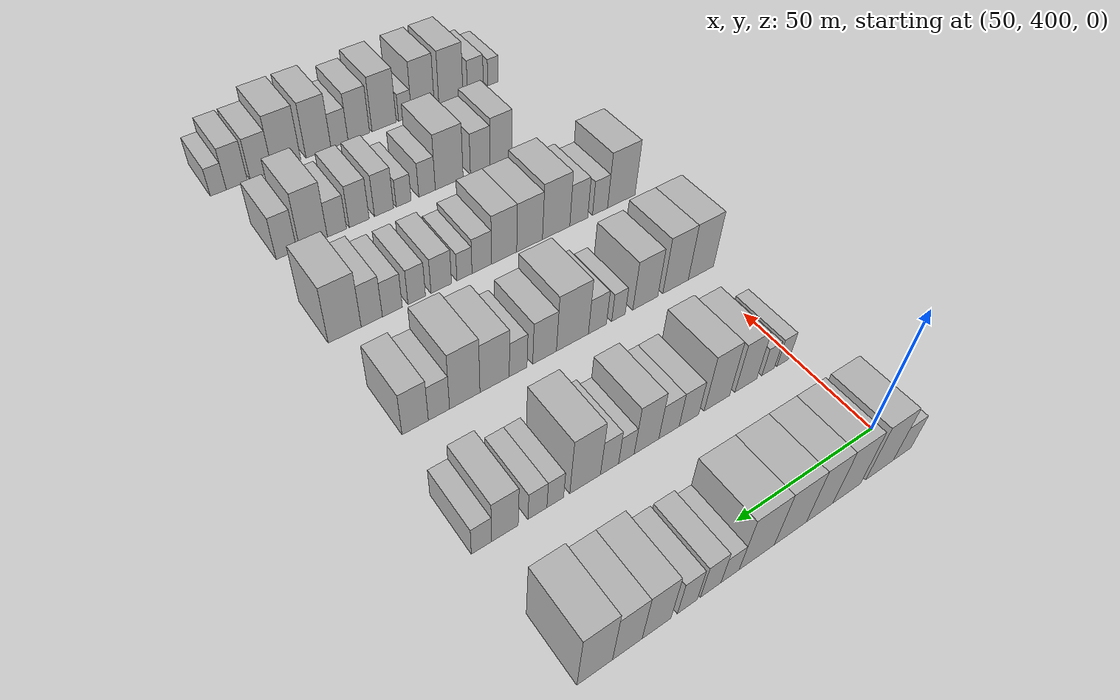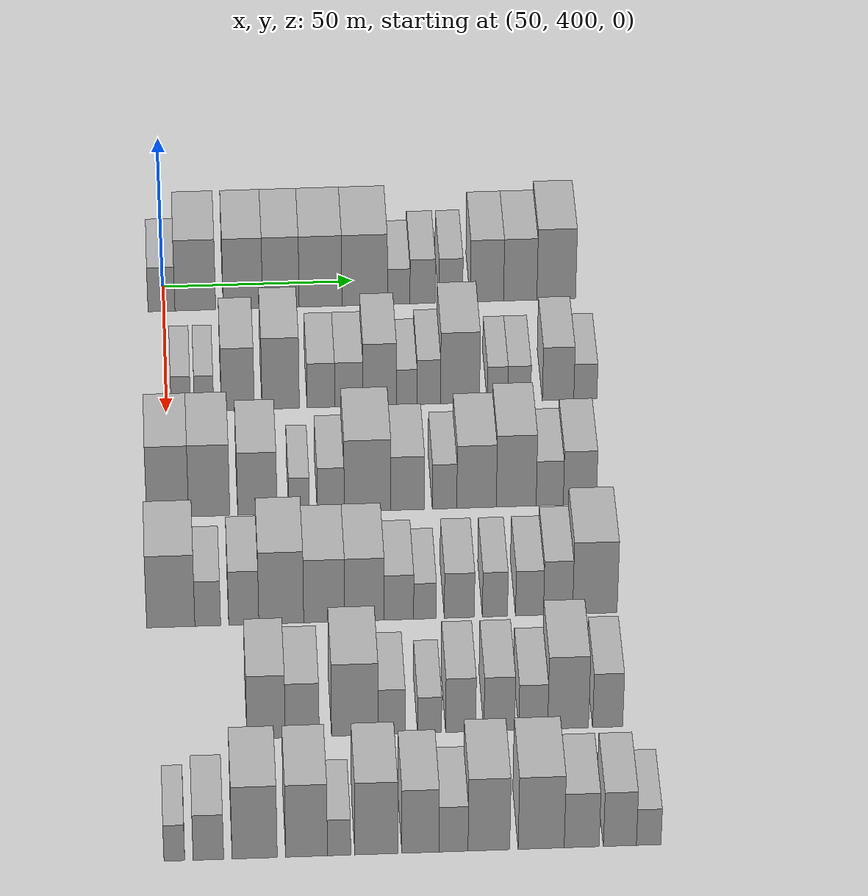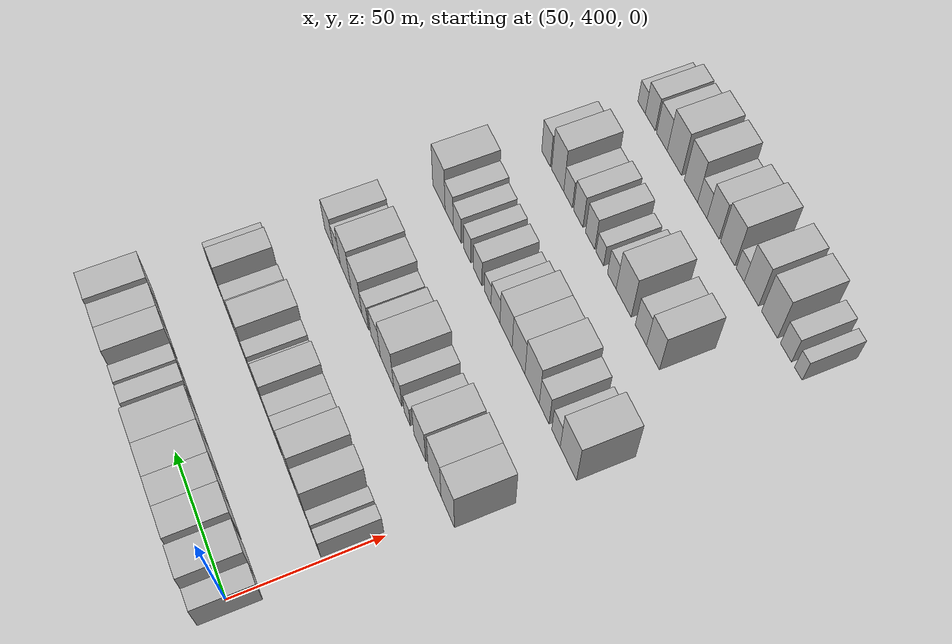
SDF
<sdf version="1.6">
 <world name="default">
  <model name="building_111">
   <static>1</static>
   <pose>50.0000 399.4264 0 0.000000 0.000000 0.000000</pose>
   <link name="link">
    <pose>0 0 7.50 0 0 0</pose>
    <collision name="collision"><geometry><box><size>20.0000 7.0589 15.0000</size></box></geometry></collision>
    <visual name="visual">
     <cast_shadows>0</cast_shadows>
     <geometry><box><size>20.0000 7.0589 15.0000</size></box></geometry>
     <material>
      <script>
       <uri>model://HANNAS_wall/materials/scripts</uri>
       <uri>model://HANNAS_wall/materials/textures</uri>
       <name>vrc/HANNAS_wall</name>
      </script>
     </material>
    </visual>
   </link>
  </model>
  <model name="building_112">
   <static>1</static>
   <pose>50.0000 408.3077 0 0.000000 0.000000 0.000000</pose>
   <link name="link">
    <pose>0 0 12.00 0 0 0</pose>
    <collision name="collision"><geometry><box><size>20.0000 10.7039 24.0000</size></box></geometry></collision>
    <visual name="visual">
     <cast_shadows>0</cast_shadows>
     <geometry><box><size>20.0000 10.7039 24.0000</size></box></geometry>
     <material>
      <script>
       <uri>model://HANNAS_wall/materials/scripts</uri>
       <uri>model://HANNAS_wall/materials/textures</uri>
       <name>vrc/HANNAS_wall</name>
      </script>
     </material>
    </visual>
   </link>
  </model>
  <model name="building_113">
   <static>1</static>
   <pose>50.0000 420.8153 0 0.000000 0.000000 0.000000</pose>
   <link name="link">
    <pose>0 0 12.00 0 0 0</pose>
    <collision name="collision"><geometry><box><size>20.0000 10.3112 24.0000</size></box></geometry></collision>
    <visual name="visual">
     <cast_shadows>0</cast_shadows>
     <geometry><box><size>20.0000 10.3112 24.0000</size></box></geometry>
     <material>
      <script>
       <uri>model://HANNAS_wall/materials/scripts</uri>
       <uri>model://HANNAS_wall/materials/textures</uri>
       <name>vrc/HANNAS_wall</name>
      </script>
     </material>
    </visual>
   </link>
  </model>
  <model name="building_114">
   <static>1</static>
   <pose>50.0000 430.7831 0 0.000000 0.000000 0.000000</pose>
   <link name="link">
    <pose>0 0 12.00 0 0 0</pose>
    <collision name="collision"><geometry><box><size>20.0000 9.6246 24.0000</size></box></geometry></collision>
    <visual name="visual">
     <cast_shadows>0</cast_shadows>
     <geometry><box><size>20.0000 9.6246 24.0000</size></box></geometry>
     <material>
      <script>
       <uri>model://HANNAS_wall/materials/scripts</uri>
       <uri>model://HANNAS_wall/materials/textures</uri>
       <name>vrc/HANNAS_wall</name>
      </script>
     </material>
    </visual>
   </link>
  </model>
  <model name="building_115">
   <static>1</static>
   <pose>50.0000 441.2282 0 0.000000 0.000000 0.000000</pose>
   <link name="link">
    <pose>0 0 12.00 0 0 0</pose>
    <collision name="collision"><geometry><box><size>20.0000 11.2655 24.0000</size></box></geometry></collision>
    <visual name="visual">
     <cast_shadows>0</cast_shadows>
     <geometry><box><size>20.0000 11.2655 24.0000</size></box></geometry>
     <material>
      <script>
       <uri>model://HANNAS_wall/materials/scripts</uri>
       <uri>model://HANNAS_wall/materials/textures</uri>
       <name>vrc/HANNAS_wall</name>
      </script>
     </material>
    </visual>
   </link>
  </model>
  <model name="building_116">
   <static>1</static>
   <pose>50.0000 452.8354 0 0.000000 0.000000 0.000000</pose>
   <link name="link">
    <pose>0 0 12.00 0 0 0</pose>
    <collision name="collision"><geometry><box><size>20.0000 11.9491 24.0000</size></box></geometry></collision>
    <visual name="visual">
     <cast_shadows>0</cast_shadows>
     <geometry><box><size>20.0000 11.9491 24.0000</size></box></geometry>
     <material>
      <script>
       <uri>model://HANNAS_wall/materials/scripts</uri>
       <uri>model://HANNAS_wall/materials/textures</uri>
       <name>vrc/HANNAS_wall</name>
      </script>
     </material>
    </visual>
   </link>
  </model>
  <model name="building_117">
   <static>1</static>
   <pose>50.0000 461.7964 0 0.000000 0.000000 0.000000</pose>
   <link name="link">
    <pose>0 0 6.00 0 0 0</pose>
    <collision name="collision"><geometry><box><size>20.0000 5.9728 12.0000</size></box></geometry></collision>
    <visual name="visual">
     <cast_shadows>0</cast_shadows>
     <geometry><box><size>20.0000 5.9728 12.0000</size></box></geometry>
     <material>
      <script>
       <uri>model://HANNAS_wall/materials/scripts</uri>
       <uri>model://HANNAS_wall/materials/textures</uri>
       <name>vrc/HANNAS_wall</name>
      </script>
     </material>
    </visual>
   </link>
  </model>
  <model name="building_118">
   <static>1</static>
   <pose>50.0000 468.0934 0 0.000000 0.000000 0.000000</pose>
   <link name="link">
    <pose>0 0 7.50 0 0 0</pose>
    <collision name="collision"><geometry><box><size>20.0000 6.6213 15.0000</size></box></geometry></collision>
    <visual name="visual">
     <cast_shadows>0</cast_shadows>
     <geometry><box><size>20.0000 6.6213 15.0000</size></box></geometry>
     <material>
      <script>
       <uri>model://HANNAS_wall/materials/scripts</uri>
       <uri>model://HANNAS_wall/materials/textures</uri>
       <name>vrc/HANNAS_wall</name>
      </script>
     </material>
    </visual>
   </link>
  </model>
  <model name="building_119">
   <static>1</static>
   <pose>50.0000 475.5286 0 0.000000 0.000000 0.000000</pose>
   <link name="link">
    <pose>0 0 7.50 0 0 0</pose>
    <collision name="collision"><geometry><box><size>20.0000 6.2490 15.0000</size></box></geometry></collision>
    <visual name="visual">
     <cast_shadows>0</cast_shadows>
     <geometry><box><size>20.0000 6.2490 15.0000</size></box></geometry>
     <material>
      <script>
       <uri>model://HANNAS_wall/materials/scripts</uri>
       <uri>model://HANNAS_wall/materials/textures</uri>
       <name>vrc/HANNAS_wall</name>
      </script>
     </material>
    </visual>
   </link>
  </model>
  <model name="building_120">
   <static>1</static>
   <pose>50.0000 485.0445 0 0.000000 0.000000 0.000000</pose>
   <link name="link">
    <pose>0 0 10.50 0 0 0</pose>
    <collision name="collision"><geometry><box><size>20.0000 8.7830 21.0000</size></box></geometry></collision>
    <visual name="visual">
     <cast_shadows>0</cast_shadows>
     <geometry><box><size>20.0000 8.7830 21.0000</size></box></geometry>
     <material>
      <script>
       <uri>model://HANNAS_wall/materials/scripts</uri>
       <uri>model://HANNAS_wall/materials/textures</uri>
       <name>vrc/HANNAS_wall</name>
      </script>
     </material>
    </visual>
   </link>
  </model>
  <model name="building_121">
   <static>1</static>
   <pose>50.0000 493.8244 0 0.000000 0.000000 0.000000</pose>
   <link name="link">
    <pose>0 0 10.50 0 0 0</pose>
    <collision name="collision"><geometry><box><size>20.0000 8.7767 21.0000</size></box></geometry></collision>
    <visual name="visual">
     <cast_shadows>0</cast_shadows>
     <geometry><box><size>20.0000 8.7767 21.0000</size></box></geometry>
     <material>
      <script>
       <uri>model://HANNAS_wall/materials/scripts</uri>
       <uri>model://HANNAS_wall/materials/textures</uri>
       <name>vrc/HANNAS_wall</name>
      </script>
     </material>
    </visual>
   </link>
  </model>
  <model name="building_122">
   <static>1</static>
   <pose>50.0000 503.3125 0 0.000000 0.000000 0.000000</pose>
   <link name="link">
    <pose>0 0 12.00 0 0 0</pose>
    <collision name="collision"><geometry><box><size>20.0000 10.1996 24.0000</size></box></geometry></collision>
    <visual name="visual">
     <cast_shadows>0</cast_shadows>
     <geometry><box><size>20.0000 10.1996 24.0000</size></box></geometry>
     <material>
      <script>
       <uri>model://HANNAS_wall/materials/scripts</uri>
       <uri>model://HANNAS_wall/materials/textures</uri>
       <name>vrc/HANNAS_wall</name>
      </script>
     </material>
    </visual>
   </link>
  </model>
  <model name="building_249">
   <static>1</static>
   <pose>90.0000 403.7548 0 0.000000 0.000000 0.000000</pose>
   <link name="link">
    <pose>0 0 6.00 0 0 0</pose>
    <collision name="collision"><geometry><box><size>20.0000 4.9870 12.0000</size></box></geometry></collision>
    <visual name="visual">
     <cast_shadows>0</cast_shadows>
     <geometry><box><size>20.0000 4.9870 12.0000</size></box></geometry>
     <material>
      <script>
       <uri>model://HANNAS_wall/materials/scripts</uri>
       <uri>model://HANNAS_wall/materials/textures</uri>
       <name>vrc/HANNAS_wall</name>
      </script>
     </material>
    </visual>
   </link>
  </model>
  <model name="building_250">
   <static>1</static>
   <pose>90.0000 409.7225 0 0.000000 0.000000 0.000000</pose>
   <link name="link">
    <pose>0 0 6.00 0 0 0</pose>
    <collision name="collision"><geometry><box><size>20.0000 4.9484 12.0000</size></box></geometry></collision>
    <visual name="visual">
     <cast_shadows>0</cast_shadows>
     <geometry><box><size>20.0000 4.9484 12.0000</size></box></geometry>
     <material>
      <script>
       <uri>model://HANNAS_wall/materials/scripts</uri>
       <uri>model://HANNAS_wall/materials/textures</uri>
       <name>vrc/HANNAS_wall</name>
      </script>
     </material>
    </visual>
   </link>
  </model>
  <model name="building_251">
   <static>1</static>
   <pose>90.0000 418.4269 0 0.000000 0.000000 0.000000</pose>
   <link name="link">
    <pose>0 0 10.50 0 0 0</pose>
    <collision name="collision"><geometry><box><size>20.0000 8.4603 21.0000</size></box></geometry></collision>
    <visual name="visual">
     <cast_shadows>0</cast_shadows>
     <geometry><box><size>20.0000 8.4603 21.0000</size></box></geometry>
     <material>
      <script>
       <uri>model://HANNAS_wall/materials/scripts</uri>
       <uri>model://HANNAS_wall/materials/textures</uri>
       <name>vrc/HANNAS_wall</name>
      </script>
     </material>
    </visual>
   </link>
  </model>
  <model name="building_252">
   <static>1</static>
   <pose>90.0000 429.4572 0 0.000000 0.000000 0.000000</pose>
   <link name="link">
    <pose>0 0 12.00 0 0 0</pose>
    <collision name="collision"><geometry><box><size>20.0000 9.6005 24.0000</size></box></geometry></collision>
    <visual name="visual">
     <cast_shadows>0</cast_shadows>
     <geometry><box><size>20.0000 9.6005 24.0000</size></box></geometry>
     <material>
      <script>
       <uri>model://HANNAS_wall/materials/scripts</uri>
       <uri>model://HANNAS_wall/materials/textures</uri>
       <name>vrc/HANNAS_wall</name>
      </script>
     </material>
    </visual>
   </link>
  </model>
  <model name="building_253">
   <static>1</static>
   <pose>90.0000 439.8333 0 0.000000 0.000000 0.000000</pose>
   <link name="link">
    <pose>0 0 7.50 0 0 0</pose>
    <collision name="collision"><geometry><box><size>20.0000 7.1517 15.0000</size></box></geometry></collision>
    <visual name="visual">
     <cast_shadows>0</cast_shadows>
     <geometry><box><size>20.0000 7.1517 15.0000</size></box></geometry>
     <material>
      <script>
       <uri>model://HANNAS_wall/materials/scripts</uri>
       <uri>model://HANNAS_wall/materials/textures</uri>
       <name>vrc/HANNAS_wall</name>
      </script>
     </material>
    </visual>
   </link>
  </model>
  <model name="building_254">
   <static>1</static>
   <pose>90.0000 447.0410 0 0.000000 0.000000 0.000000</pose>
   <link name="link">
    <pose>0 0 7.50 0 0 0</pose>
    <collision name="collision"><geometry><box><size>20.0000 7.2637 15.0000</size></box></geometry></collision>
    <visual name="visual">
     <cast_shadows>0</cast_shadows>
     <geometry><box><size>20.0000 7.2637 15.0000</size></box></geometry>
     <material>
      <script>
       <uri>model://HANNAS_wall/materials/scripts</uri>
       <uri>model://HANNAS_wall/materials/textures</uri>
       <name>vrc/HANNAS_wall</name>
      </script>
     </material>
    </visual>
   </link>
  </model>
  <model name="building_255">
   <static>1</static>
   <pose>90.0000 454.9723 0 0.000000 0.000000 0.000000</pose>
   <link name="link">
    <pose>0 0 10.50 0 0 0</pose>
    <collision name="collision"><geometry><box><size>20.0000 8.5988 21.0000</size></box></geometry></collision>
    <visual name="visual">
     <cast_shadows>0</cast_shadows>
     <geometry><box><size>20.0000 8.5988 21.0000</size></box></geometry>
     <material>
      <script>
       <uri>model://HANNAS_wall/materials/scripts</uri>
       <uri>model://HANNAS_wall/materials/textures</uri>
       <name>vrc/HANNAS_wall</name>
      </script>
     </material>
    </visual>
   </link>
  </model>
  <model name="building_256">
   <static>1</static>
   <pose>90.0000 461.9414 0 0.000000 0.000000 0.000000</pose>
   <link name="link">
    <pose>0 0 6.00 0 0 0</pose>
    <collision name="collision"><geometry><box><size>20.0000 5.3395 12.0000</size></box></geometry></collision>
    <visual name="visual">
     <cast_shadows>0</cast_shadows>
     <geometry><box><size>20.0000 5.3395 12.0000</size></box></geometry>
     <material>
      <script>
       <uri>model://HANNAS_wall/materials/scripts</uri>
       <uri>model://HANNAS_wall/materials/textures</uri>
       <name>vrc/HANNAS_wall</name>
      </script>
     </material>
    </visual>
   </link>
  </model>
  <model name="building_257">
   <static>1</static>
   <pose>90.0000 467.6461 0 0.000000 0.000000 0.000000</pose>
   <link name="link">
    <pose>0 0 7.50 0 0 0</pose>
    <collision name="collision"><geometry><box><size>20.0000 6.0700 15.0000</size></box></geometry></collision>
    <visual name="visual">
     <cast_shadows>0</cast_shadows>
     <geometry><box><size>20.0000 6.0700 15.0000</size></box></geometry>
     <material>
      <script>
       <uri>model://HANNAS_wall/materials/scripts</uri>
       <uri>model://HANNAS_wall/materials/textures</uri>
       <name>vrc/HANNAS_wall</name>
      </script>
     </material>
    </visual>
   </link>
  </model>
  <model name="building_258">
   <static>1</static>
   <pose>90.0000 475.7123 0 0.000000 0.000000 0.000000</pose>
   <link name="link">
    <pose>0 0 12.00 0 0 0</pose>
    <collision name="collision"><geometry><box><size>20.0000 10.0623 24.0000</size></box></geometry></collision>
    <visual name="visual">
     <cast_shadows>0</cast_shadows>
     <geometry><box><size>20.0000 10.0623 24.0000</size></box></geometry>
     <material>
      <script>
       <uri>model://HANNAS_wall/materials/scripts</uri>
       <uri>model://HANNAS_wall/materials/textures</uri>
       <name>vrc/HANNAS_wall</name>
      </script>
     </material>
    </visual>
   </link>
  </model>
  <model name="building_259">
   <static>1</static>
   <pose>90.0000 485.4046 0 0.000000 0.000000 0.000000</pose>
   <link name="link">
    <pose>0 0 6.00 0 0 0</pose>
    <collision name="collision"><geometry><box><size>20.0000 5.3223 12.0000</size></box></geometry></collision>
    <visual name="visual">
     <cast_shadows>0</cast_shadows>
     <geometry><box><size>20.0000 5.3223 12.0000</size></box></geometry>
     <material>
      <script>
       <uri>model://HANNAS_wall/materials/scripts</uri>
       <uri>model://HANNAS_wall/materials/textures</uri>
       <name>vrc/HANNAS_wall</name>
      </script>
     </material>
    </visual>
   </link>
  </model>
  <model name="building_260">
   <static>1</static>
   <pose>90.0000 491.0304 0 0.000000 0.000000 0.000000</pose>
   <link name="link">
    <pose>0 0 6.00 0 0 0</pose>
    <collision name="collision"><geometry><box><size>20.0000 5.9293 12.0000</size></box></geometry></collision>
    <visual name="visual">
     <cast_shadows>0</cast_shadows>
     <geometry><box><size>20.0000 5.9293 12.0000</size></box></geometry>
     <material>
      <script>
       <uri>model://HANNAS_wall/materials/scripts</uri>
       <uri>model://HANNAS_wall/materials/textures</uri>
       <name>vrc/HANNAS_wall</name>
      </script>
     </material>
    </visual>
   </link>
  </model>
  <model name="building_261">
   <static>1</static>
   <pose>90.0000 501.0549 0 0.000000 0.000000 0.000000</pose>
   <link name="link">
    <pose>0 0 9.00 0 0 0</pose>
    <collision name="collision"><geometry><box><size>20.0000 8.1198 18.0000</size></box></geometry></collision>
    <visual name="visual">
     <cast_shadows>0</cast_shadows>
     <geometry><box><size>20.0000 8.1198 18.0000</size></box></geometry>
     <material>
      <script>
       <uri>model://HANNAS_wall/materials/scripts</uri>
       <uri>model://HANNAS_wall/materials/textures</uri>
       <name>vrc/HANNAS_wall</name>
      </script>
     </material>
    </visual>
   </link>
  </model>
  <model name="building_262">
   <static>1</static>
   <pose>90.0000 508.1097 0 0.000000 0.000000 0.000000</pose>
   <link name="link">
    <pose>0 0 6.00 0 0 0</pose>
    <collision name="collision"><geometry><box><size>20.0000 5.9897 12.0000</size></box></geometry></collision>
    <visual name="visual">
     <cast_shadows>0</cast_shadows>
     <geometry><box><size>20.0000 5.9897 12.0000</size></box></geometry>
     <material>
      <script>
       <uri>model://HANNAS_wall/materials/scripts</uri>
       <uri>model://HANNAS_wall/materials/textures</uri>
       <name>vrc/HANNAS_wall</name>
      </script>
     </material>
    </visual>
   </link>
  </model>
  <model name="building_390">
   <static>1</static>
   <pose>130.0000 399.6352 0 0.000000 0.000000 0.000000</pose>
   <link name="link">
    <pose>0 0 12.00 0 0 0</pose>
    <collision name="collision"><geometry><box><size>20.0000 10.5675 24.0000</size></box></geometry></collision>
    <visual name="visual">
     <cast_shadows>0</cast_shadows>
     <geometry><box><size>20.0000 10.5675 24.0000</size></box></geometry>
     <material>
      <script>
       <uri>model://HANNAS_wall/materials/scripts</uri>
       <uri>model://HANNAS_wall/materials/textures</uri>
       <name>vrc/HANNAS_wall</name>
      </script>
     </material>
    </visual>
   </link>
  </model>
  <model name="building_391">
   <static>1</static>
   <pose>130.0000 410.1141 0 0.000000 0.000000 0.000000</pose>
   <link name="link">
    <pose>0 0 12.00 0 0 0</pose>
    <collision name="collision"><geometry><box><size>20.0000 10.3903 24.0000</size></box></geometry></collision>
    <visual name="visual">
     <cast_shadows>0</cast_shadows>
     <geometry><box><size>20.0000 10.3903 24.0000</size></box></geometry>
     <material>
      <script>
       <uri>model://HANNAS_wall/materials/scripts</uri>
       <uri>model://HANNAS_wall/materials/textures</uri>
       <name>vrc/HANNAS_wall</name>
      </script>
     </material>
    </visual>
   </link>
  </model>
  <model name="building_392">
   <static>1</static>
   <pose>130.0000 422.2663 0 0.000000 0.000000 0.000000</pose>
   <link name="link">
    <pose>0 0 10.50 0 0 0</pose>
    <collision name="collision"><geometry><box><size>20.0000 9.9141 21.0000</size></box></geometry></collision>
    <visual name="visual">
     <cast_shadows>0</cast_shadows>
     <geometry><box><size>20.0000 9.9141 21.0000</size></box></geometry>
     <material>
      <script>
       <uri>model://HANNAS_wall/materials/scripts</uri>
       <uri>model://HANNAS_wall/materials/textures</uri>
       <name>vrc/HANNAS_wall</name>
      </script>
     </material>
    </visual>
   </link>
  </model>
  <model name="building_393">
   <static>1</static>
   <pose>130.0000 432.8117 0 0.000000 0.000000 0.000000</pose>
   <link name="link">
    <pose>0 0 6.00 0 0 0</pose>
    <collision name="collision"><geometry><box><size>20.0000 5.1768 12.0000</size></box></geometry></collision>
    <visual name="visual">
     <cast_shadows>0</cast_shadows>
     <geometry><box><size>20.0000 5.1768 12.0000</size></box></geometry>
     <material>
      <script>
       <uri>model://HANNAS_wall/materials/scripts</uri>
       <uri>model://HANNAS_wall/materials/textures</uri>
       <name>vrc/HANNAS_wall</name>
      </script>
     </material>
    </visual>
   </link>
  </model>
  <model name="building_394">
   <static>1</static>
   <pose>130.0000 440.8005 0 0.000000 0.000000 0.000000</pose>
   <link name="link">
    <pose>0 0 7.50 0 0 0</pose>
    <collision name="collision"><geometry><box><size>20.0000 6.8008 15.0000</size></box></geometry></collision>
    <visual name="visual">
     <cast_shadows>0</cast_shadows>
     <geometry><box><size>20.0000 6.8008 15.0000</size></box></geometry>
     <material>
      <script>
       <uri>model://HANNAS_wall/materials/scripts</uri>
       <uri>model://HANNAS_wall/materials/textures</uri>
       <name>vrc/HANNAS_wall</name>
      </script>
     </material>
    </visual>
   </link>
  </model>
  <model name="building_395">
   <static>1</static>
   <pose>130.0000 450.0784 0 0.000000 0.000000 0.000000</pose>
   <link name="link">
    <pose>0 0 12.00 0 0 0</pose>
    <collision name="collision"><geometry><box><size>20.0000 11.7549 24.0000</size></box></geometry></collision>
    <visual name="visual">
     <cast_shadows>0</cast_shadows>
     <geometry><box><size>20.0000 11.7549 24.0000</size></box></geometry>
     <material>
      <script>
       <uri>model://HANNAS_wall/materials/scripts</uri>
       <uri>model://HANNAS_wall/materials/textures</uri>
       <name>vrc/HANNAS_wall</name>
      </script>
     </material>
    </visual>
   </link>
  </model>
  <model name="building_396">
   <static>1</static>
   <pose>130.0000 460.2153 0 0.000000 0.000000 0.000000</pose>
   <link name="link">
    <pose>0 0 9.00 0 0 0</pose>
    <collision name="collision"><geometry><box><size>20.0000 8.5189 18.0000</size></box></geometry></collision>
    <visual name="visual">
     <cast_shadows>0</cast_shadows>
     <geometry><box><size>20.0000 8.5189 18.0000</size></box></geometry>
     <material>
      <script>
       <uri>model://HANNAS_wall/materials/scripts</uri>
       <uri>model://HANNAS_wall/materials/textures</uri>
       <name>vrc/HANNAS_wall</name>
      </script>
     </material>
    </visual>
   </link>
  </model>
  <model name="building_397">
   <static>1</static>
   <pose>130.0000 469.5668 0 0.000000 0.000000 0.000000</pose>
   <link name="link">
    <pose>0 0 7.50 0 0 0</pose>
    <collision name="collision"><geometry><box><size>20.0000 6.1840 15.0000</size></box></geometry></collision>
    <visual name="visual">
     <cast_shadows>0</cast_shadows>
     <geometry><box><size>20.0000 6.1840 15.0000</size></box></geometry>
     <material>
      <script>
       <uri>model://HANNAS_wall/materials/scripts</uri>
       <uri>model://HANNAS_wall/materials/textures</uri>
       <name>vrc/HANNAS_wall</name>
      </script>
     </material>
    </visual>
   </link>
  </model>
  <model name="building_398">
   <static>1</static>
   <pose>130.0000 477.6536 0 0.000000 0.000000 0.000000</pose>
   <link name="link">
    <pose>0 0 10.50 0 0 0</pose>
    <collision name="collision"><geometry><box><size>20.0000 9.9896 21.0000</size></box></geometry></collision>
    <visual name="visual">
     <cast_shadows>0</cast_shadows>
     <geometry><box><size>20.0000 9.9896 21.0000</size></box></geometry>
     <material>
      <script>
       <uri>model://HANNAS_wall/materials/scripts</uri>
       <uri>model://HANNAS_wall/materials/textures</uri>
       <name>vrc/HANNAS_wall</name>
      </script>
     </material>
    </visual>
   </link>
  </model>
  <model name="building_399">
   <static>1</static>
   <pose>130.0000 487.6936 0 0.000000 0.000000 0.000000</pose>
   <link name="link">
    <pose>0 0 12.00 0 0 0</pose>
    <collision name="collision"><geometry><box><size>20.0000 10.0903 24.0000</size></box></geometry></collision>
    <visual name="visual">
     <cast_shadows>0</cast_shadows>
     <geometry><box><size>20.0000 10.0903 24.0000</size></box></geometry>
     <material>
      <script>
       <uri>model://HANNAS_wall/materials/scripts</uri>
       <uri>model://HANNAS_wall/materials/textures</uri>
       <name>vrc/HANNAS_wall</name>
      </script>
     </material>
    </visual>
   </link>
  </model>
  <model name="building_400">
   <static>1</static>
   <pose>130.0000 496.1750 0 0.000000 0.000000 0.000000</pose>
   <link name="link">
    <pose>0 0 7.50 0 0 0</pose>
    <collision name="collision"><geometry><box><size>20.0000 6.8726 15.0000</size></box></geometry></collision>
    <visual name="visual">
     <cast_shadows>0</cast_shadows>
     <geometry><box><size>20.0000 6.8726 15.0000</size></box></geometry>
     <material>
      <script>
       <uri>model://HANNAS_wall/materials/scripts</uri>
       <uri>model://HANNAS_wall/materials/textures</uri>
       <name>vrc/HANNAS_wall</name>
      </script>
     </material>
    </visual>
   </link>
  </model>
  <model name="building_401">
   <static>1</static>
   <pose>130.0000 503.7958 0 0.000000 0.000000 0.000000</pose>
   <link name="link">
    <pose>0 0 9.00 0 0 0</pose>
    <collision name="collision"><geometry><box><size>20.0000 8.3692 18.0000</size></box></geometry></collision>
    <visual name="visual">
     <cast_shadows>0</cast_shadows>
     <geometry><box><size>20.0000 8.3692 18.0000</size></box></geometry>
     <material>
      <script>
       <uri>model://HANNAS_wall/materials/scripts</uri>
       <uri>model://HANNAS_wall/materials/textures</uri>
       <name>vrc/HANNAS_wall</name>
      </script>
     </material>
    </visual>
   </link>
  </model>
  <model name="building_529">
   <static>1</static>
   <pose>170.0000 399.7081 0 0.000000 0.000000 0.000000</pose>
   <link name="link">
    <pose>0 0 12.00 0 0 0</pose>
    <collision name="collision"><geometry><box><size>20.0000 11.8728 24.0000</size></box></geometry></collision>
    <visual name="visual">
     <cast_shadows>0</cast_shadows>
     <geometry><box><size>20.0000 11.8728 24.0000</size></box></geometry>
     <material>
      <script>
       <uri>model://HANNAS_wall/materials/scripts</uri>
       <uri>model://HANNAS_wall/materials/textures</uri>
       <name>vrc/HANNAS_wall</name>
      </script>
     </material>
    </visual>
   </link>
  </model>
  <model name="building_530">
   <static>1</static>
   <pose>170.0000 408.8256 0 0.000000 0.000000 0.000000</pose>
   <link name="link">
    <pose>0 0 7.50 0 0 0</pose>
    <collision name="collision"><geometry><box><size>20.0000 6.3622 15.0000</size></box></geometry></collision>
    <visual name="visual">
     <cast_shadows>0</cast_shadows>
     <geometry><box><size>20.0000 6.3622 15.0000</size></box></geometry>
     <material>
      <script>
       <uri>model://HANNAS_wall/materials/scripts</uri>
       <uri>model://HANNAS_wall/materials/textures</uri>
       <name>vrc/HANNAS_wall</name>
      </script>
     </material>
    </visual>
   </link>
  </model>
  <model name="building_531">
   <static>1</static>
   <pose>170.0000 417.7271 0 0.000000 0.000000 0.000000</pose>
   <link name="link">
    <pose>0 0 9.00 0 0 0</pose>
    <collision name="collision"><geometry><box><size>20.0000 7.4407 18.0000</size></box></geometry></collision>
    <visual name="visual">
     <cast_shadows>0</cast_shadows>
     <geometry><box><size>20.0000 7.4407 18.0000</size></box></geometry>
     <material>
      <script>
       <uri>model://HANNAS_wall/materials/scripts</uri>
       <uri>model://HANNAS_wall/materials/textures</uri>
       <name>vrc/HANNAS_wall</name>
      </script>
     </material>
    </visual>
   </link>
  </model>
  <model name="building_532">
   <static>1</static>
   <pose>170.0000 426.9903 0 0.000000 0.000000 0.000000</pose>
   <link name="link">
    <pose>0 0 12.00 0 0 0</pose>
    <collision name="collision"><geometry><box><size>20.0000 11.0858 24.0000</size></box></geometry></collision>
    <visual name="visual">
     <cast_shadows>0</cast_shadows>
     <geometry><box><size>20.0000 11.0858 24.0000</size></box></geometry>
     <material>
      <script>
       <uri>model://HANNAS_wall/materials/scripts</uri>
       <uri>model://HANNAS_wall/materials/textures</uri>
       <name>vrc/HANNAS_wall</name>
      </script>
     </material>
    </visual>
   </link>
  </model>
  <model name="building_533">
   <static>1</static>
   <pose>170.0000 437.6129 0 0.000000 0.000000 0.000000</pose>
   <link name="link">
    <pose>0 0 10.50 0 0 0</pose>
    <collision name="collision"><geometry><box><size>20.0000 10.1594 21.0000</size></box></geometry></collision>
    <visual name="visual">
     <cast_shadows>0</cast_shadows>
     <geometry><box><size>20.0000 10.1594 21.0000</size></box></geometry>
     <material>
      <script>
       <uri>model://HANNAS_wall/materials/scripts</uri>
       <uri>model://HANNAS_wall/materials/textures</uri>
       <name>vrc/HANNAS_wall</name>
      </script>
     </material>
    </visual>
   </link>
  </model>
  <model name="building_534">
   <static>1</static>
   <pose>170.0000 447.5653 0 0.000000 0.000000 0.000000</pose>
   <link name="link">
    <pose>0 0 10.50 0 0 0</pose>
    <collision name="collision"><geometry><box><size>20.0000 9.7455 21.0000</size></box></geometry></collision>
    <visual name="visual">
     <cast_shadows>0</cast_shadows>
     <geometry><box><size>20.0000 9.7455 21.0000</size></box></geometry>
     <material>
      <script>
       <uri>model://HANNAS_wall/materials/scripts</uri>
       <uri>model://HANNAS_wall/materials/textures</uri>
       <name>vrc/HANNAS_wall</name>
      </script>
     </material>
    </visual>
   </link>
  </model>
  <model name="building_535">
   <static>1</static>
   <pose>170.0000 456.0968 0 0.000000 0.000000 0.000000</pose>
   <link name="link">
    <pose>0 0 7.50 0 0 0</pose>
    <collision name="collision"><geometry><box><size>20.0000 7.3175 15.0000</size></box></geometry></collision>
    <visual name="visual">
     <cast_shadows>0</cast_shadows>
     <geometry><box><size>20.0000 7.3175 15.0000</size></box></geometry>
     <material>
      <script>
       <uri>model://HANNAS_wall/materials/scripts</uri>
       <uri>model://HANNAS_wall/materials/textures</uri>
       <name>vrc/HANNAS_wall</name>
      </script>
     </material>
    </visual>
   </link>
  </model>
  <model name="building_536">
   <static>1</static>
   <pose>170.0000 462.5537 0 0.000000 0.000000 0.000000</pose>
   <link name="link">
    <pose>0 0 6.00 0 0 0</pose>
    <collision name="collision"><geometry><box><size>20.0000 5.5962 12.0000</size></box></geometry></collision>
    <visual name="visual">
     <cast_shadows>0</cast_shadows>
     <geometry><box><size>20.0000 5.5962 12.0000</size></box></geometry>
     <material>
      <script>
       <uri>model://HANNAS_wall/materials/scripts</uri>
       <uri>model://HANNAS_wall/materials/textures</uri>
       <name>vrc/HANNAS_wall</name>
      </script>
     </material>
    </visual>
   </link>
  </model>
  <model name="building_537">
   <static>1</static>
   <pose>170.0000 471.0677 0 0.000000 0.000000 0.000000</pose>
   <link name="link">
    <pose>0 0 7.50 0 0 0</pose>
    <collision name="collision"><geometry><box><size>20.0000 7.4318 15.0000</size></box></geometry></collision>
    <visual name="visual">
     <cast_shadows>0</cast_shadows>
     <geometry><box><size>20.0000 7.4318 15.0000</size></box></geometry>
     <material>
      <script>
       <uri>model://HANNAS_wall/materials/scripts</uri>
       <uri>model://HANNAS_wall/materials/textures</uri>
       <name>vrc/HANNAS_wall</name>
      </script>
     </material>
    </visual>
   </link>
  </model>
  <model name="building_538">
   <static>1</static>
   <pose>170.0000 479.8901 0 0.000000 0.000000 0.000000</pose>
   <link name="link">
    <pose>0 0 7.50 0 0 0</pose>
    <collision name="collision"><geometry><box><size>20.0000 6.2130 15.0000</size></box></geometry></collision>
    <visual name="visual">
     <cast_shadows>0</cast_shadows>
     <geometry><box><size>20.0000 6.2130 15.0000</size></box></geometry>
     <material>
      <script>
       <uri>model://HANNAS_wall/materials/scripts</uri>
       <uri>model://HANNAS_wall/materials/textures</uri>
       <name>vrc/HANNAS_wall</name>
      </script>
     </material>
    </visual>
   </link>
  </model>
  <model name="building_539">
   <static>1</static>
   <pose>170.0000 488.4553 0 0.000000 0.000000 0.000000</pose>
   <link name="link">
    <pose>0 0 7.50 0 0 0</pose>
    <collision name="collision"><geometry><box><size>20.0000 6.9175 15.0000</size></box></geometry></collision>
    <visual name="visual">
     <cast_shadows>0</cast_shadows>
     <geometry><box><size>20.0000 6.9175 15.0000</size></box></geometry>
     <material>
      <script>
       <uri>model://HANNAS_wall/materials/scripts</uri>
       <uri>model://HANNAS_wall/materials/textures</uri>
       <name>vrc/HANNAS_wall</name>
      </script>
     </material>
    </visual>
   </link>
  </model>
  <model name="building_540">
   <static>1</static>
   <pose>170.0000 495.5277 0 0.000000 0.000000 0.000000</pose>
   <link name="link">
    <pose>0 0 9.00 0 0 0</pose>
    <collision name="collision"><geometry><box><size>20.0000 7.2272 18.0000</size></box></geometry></collision>
    <visual name="visual">
     <cast_shadows>0</cast_shadows>
     <geometry><box><size>20.0000 7.2272 18.0000</size></box></geometry>
     <material>
      <script>
       <uri>model://HANNAS_wall/materials/scripts</uri>
       <uri>model://HANNAS_wall/materials/textures</uri>
       <name>vrc/HANNAS_wall</name>
      </script>
     </material>
    </visual>
   </link>
  </model>
  <model name="building_541">
   <static>1</static>
   <pose>170.0000 504.6605 0 0.000000 0.000000 0.000000</pose>
   <link name="link">
    <pose>0 0 12.00 0 0 0</pose>
    <collision name="collision"><geometry><box><size>20.0000 11.0384 24.0000</size></box></geometry></collision>
    <visual name="visual">
     <cast_shadows>0</cast_shadows>
     <geometry><box><size>20.0000 11.0384 24.0000</size></box></geometry>
     <material>
      <script>
       <uri>model://HANNAS_wall/materials/scripts</uri>
       <uri>model://HANNAS_wall/materials/textures</uri>
       <name>vrc/HANNAS_wall</name>
      </script>
     </material>
    </visual>
   </link>
  </model>
  <model name="building_655">
   <static>1</static>
   <pose>210.0000 422.0302 0 0.000000 0.000000 0.000000</pose>
   <link name="link">
    <pose>0 0 10.50 0 0 0</pose>
    <collision name="collision"><geometry><box><size>20.0000 9.2674 21.0000</size></box></geometry></collision>
    <visual name="visual">
     <cast_shadows>0</cast_shadows>
     <geometry><box><size>20.0000 9.2674 21.0000</size></box></geometry>
     <material>
      <script>
       <uri>model://HANNAS_wall/materials/scripts</uri>
       <uri>model://HANNAS_wall/materials/textures</uri>
       <name>vrc/HANNAS_wall</name>
      </script>
     </material>
    </visual>
   </link>
  </model>
  <model name="building_656">
   <static>1</static>
   <pose>210.0000 430.7625 0 0.000000 0.000000 0.000000</pose>
   <link name="link">
    <pose>0 0 9.00 0 0 0</pose>
    <collision name="collision"><geometry><box><size>20.0000 8.1974 18.0000</size></box></geometry></collision>
    <visual name="visual">
     <cast_shadows>0</cast_shadows>
     <geometry><box><size>20.0000 8.1974 18.0000</size></box></geometry>
     <material>
      <script>
       <uri>model://HANNAS_wall/materials/scripts</uri>
       <uri>model://HANNAS_wall/materials/textures</uri>
       <name>vrc/HANNAS_wall</name>
      </script>
     </material>
    </visual>
   </link>
  </model>
  <model name="building_657">
   <static>1</static>
   <pose>210.0000 443.4937 0 0.000000 0.000000 0.000000</pose>
   <link name="link">
    <pose>0 0 12.00 0 0 0</pose>
    <collision name="collision"><geometry><box><size>20.0000 11.2649 24.0000</size></box></geometry></collision>
    <visual name="visual">
     <cast_shadows>0</cast_shadows>
     <geometry><box><size>20.0000 11.2649 24.0000</size></box></geometry>
     <material>
      <script>
       <uri>model://HANNAS_wall/materials/scripts</uri>
       <uri>model://HANNAS_wall/materials/textures</uri>
       <name>vrc/HANNAS_wall</name>
      </script>
     </material>
    </visual>
   </link>
  </model>
  <model name="building_658">
   <static>1</static>
   <pose>210.0000 452.4022 0 0.000000 0.000000 0.000000</pose>
   <link name="link">
    <pose>0 0 7.50 0 0 0</pose>
    <collision name="collision"><geometry><box><size>20.0000 6.5520 15.0000</size></box></geometry></collision>
    <visual name="visual">
     <cast_shadows>0</cast_shadows>
     <geometry><box><size>20.0000 6.5520 15.0000</size></box></geometry>
     <material>
      <script>
       <uri>model://HANNAS_wall/materials/scripts</uri>
       <uri>model://HANNAS_wall/materials/textures</uri>
       <name>vrc/HANNAS_wall</name>
      </script>
     </material>
    </visual>
   </link>
  </model>
  <model name="building_659">
   <static>1</static>
   <pose>210.0000 461.5930 0 0.000000 0.000000 0.000000</pose>
   <link name="link">
    <pose>0 0 6.00 0 0 0</pose>
    <collision name="collision"><geometry><box><size>20.0000 5.8296 12.0000</size></box></geometry></collision>
    <visual name="visual">
     <cast_shadows>0</cast_shadows>
     <geometry><box><size>20.0000 5.8296 12.0000</size></box></geometry>
     <material>
      <script>
       <uri>model://HANNAS_wall/materials/scripts</uri>
       <uri>model://HANNAS_wall/materials/textures</uri>
       <name>vrc/HANNAS_wall</name>
      </script>
     </material>
    </visual>
   </link>
  </model>
  <model name="building_660">
   <static>1</static>
   <pose>210.0000 469.1448 0 0.000000 0.000000 0.000000</pose>
   <link name="link">
    <pose>0 0 9.00 0 0 0</pose>
    <collision name="collision"><geometry><box><size>20.0000 7.2740 18.0000</size></box></geometry></collision>
    <visual name="visual">
     <cast_shadows>0</cast_shadows>
     <geometry><box><size>20.0000 7.2740 18.0000</size></box></geometry>
     <material>
      <script>
       <uri>model://HANNAS_wall/materials/scripts</uri>
       <uri>model://HANNAS_wall/materials/textures</uri>
       <name>vrc/HANNAS_wall</name>
      </script>
     </material>
    </visual>
   </link>
  </model>
  <model name="building_661">
   <static>1</static>
   <pose>210.0000 478.5104 0 0.000000 0.000000 0.000000</pose>
   <link name="link">
    <pose>0 0 9.00 0 0 0</pose>
    <collision name="collision"><geometry><box><size>20.0000 7.4572 18.0000</size></box></geometry></collision>
    <visual name="visual">
     <cast_shadows>0</cast_shadows>
     <geometry><box><size>20.0000 7.4572 18.0000</size></box></geometry>
     <material>
      <script>
       <uri>model://HANNAS_wall/materials/scripts</uri>
       <uri>model://HANNAS_wall/materials/textures</uri>
       <name>vrc/HANNAS_wall</name>
      </script>
     </material>
    </visual>
   </link>
  </model>
  <model name="building_662">
   <static>1</static>
   <pose>210.0000 486.7474 0 0.000000 0.000000 0.000000</pose>
   <link name="link">
    <pose>0 0 7.50 0 0 0</pose>
    <collision name="collision"><geometry><box><size>20.0000 7.0167 15.0000</size></box></geometry></collision>
    <visual name="visual">
     <cast_shadows>0</cast_shadows>
     <geometry><box><size>20.0000 7.0167 15.0000</size></box></geometry>
     <material>
      <script>
       <uri>model://HANNAS_wall/materials/scripts</uri>
       <uri>model://HANNAS_wall/materials/textures</uri>
       <name>vrc/HANNAS_wall</name>
      </script>
     </material>
    </visual>
   </link>
  </model>
  <model name="building_663">
   <static>1</static>
   <pose>210.0000 495.2160 0 0.000000 0.000000 0.000000</pose>
   <link name="link">
    <pose>0 0 12.00 0 0 0</pose>
    <collision name="collision"><geometry><box><size>20.0000 9.9205 24.0000</size></box></geometry></collision>
    <visual name="visual">
     <cast_shadows>0</cast_shadows>
     <geometry><box><size>20.0000 9.9205 24.0000</size></box></geometry>
     <material>
      <script>
       <uri>model://HANNAS_wall/materials/scripts</uri>
       <uri>model://HANNAS_wall/materials/textures</uri>
       <name>vrc/HANNAS_wall</name>
      </script>
     </material>
    </visual>
   </link>
  </model>
  <model name="building_664">
   <static>1</static>
   <pose>210.0000 504.8273 0 0.000000 0.000000 0.000000</pose>
   <link name="link">
    <pose>0 0 9.00 0 0 0</pose>
    <collision name="collision"><geometry><box><size>20.0000 7.3021 18.0000</size></box></geometry></collision>
    <visual name="visual">
     <cast_shadows>0</cast_shadows>
     <geometry><box><size>20.0000 7.3021 18.0000</size></box></geometry>
     <material>
      <script>
       <uri>model://HANNAS_wall/materials/scripts</uri>
       <uri>model://HANNAS_wall/materials/textures</uri>
       <name>vrc/HANNAS_wall</name>
      </script>
     </material>
    </visual>
   </link>
  </model>
  <model name="building_786">
   <static>1</static>
   <pose>250.0000 399.0817 0 0.000000 0.000000 0.000000</pose>
   <link name="link">
    <pose>0 0 6.00 0 0 0</pose>
    <collision name="collision"><geometry><box><size>20.0000 4.9049 12.0000</size></box></geometry></collision>
    <visual name="visual">
     <cast_shadows>0</cast_shadows>
     <geometry><box><size>20.0000 4.9049 12.0000</size></box></geometry>
     <material>
      <script>
       <uri>model://HANNAS_wall/materials/scripts</uri>
       <uri>model://HANNAS_wall/materials/textures</uri>
       <name>vrc/HANNAS_wall</name>
      </script>
     </material>
    </visual>
   </link>
  </model>
  <model name="building_787">
   <static>1</static>
   <pose>250.0000 407.1422 0 0.000000 0.000000 0.000000</pose>
   <link name="link">
    <pose>0 0 7.50 0 0 0</pose>
    <collision name="collision"><geometry><box><size>20.0000 7.2160 15.0000</size></box></geometry></collision>
    <visual name="visual">
     <cast_shadows>0</cast_shadows>
     <geometry><box><size>20.0000 7.2160 15.0000</size></box></geometry>
     <material>
      <script>
       <uri>model://HANNAS_wall/materials/scripts</uri>
       <uri>model://HANNAS_wall/materials/textures</uri>
       <name>vrc/HANNAS_wall</name>
      </script>
     </material>
    </visual>
   </link>
  </model>
  <model name="building_788">
   <static>1</static>
   <pose>250.0000 418.0905 0 0.000000 0.000000 0.000000</pose>
   <link name="link">
    <pose>0 0 12.00 0 0 0</pose>
    <collision name="collision"><geometry><box><size>20.0000 10.6807 24.0000</size></box></geometry></collision>
    <visual name="visual">
     <cast_shadows>0</cast_shadows>
     <geometry><box><size>20.0000 10.6807 24.0000</size></box></geometry>
     <material>
      <script>
       <uri>model://HANNAS_wall/materials/scripts</uri>
       <uri>model://HANNAS_wall/materials/textures</uri>
       <name>vrc/HANNAS_wall</name>
      </script>
     </material>
    </visual>
   </link>
  </model>
  <model name="building_789">
   <static>1</static>
   <pose>250.0000 430.3687 0 0.000000 0.000000 0.000000</pose>
   <link name="link">
    <pose>0 0 12.00 0 0 0</pose>
    <collision name="collision"><geometry><box><size>20.0000 9.8755 24.0000</size></box></geometry></collision>
    <visual name="visual">
     <cast_shadows>0</cast_shadows>
     <geometry><box><size>20.0000 9.8755 24.0000</size></box></geometry>
     <material>
      <script>
       <uri>model://HANNAS_wall/materials/scripts</uri>
       <uri>model://HANNAS_wall/materials/textures</uri>
       <name>vrc/HANNAS_wall</name>
      </script>
     </material>
    </visual>
   </link>
  </model>
  <model name="building_790">
   <static>1</static>
   <pose>250.0000 438.0627 0 0.000000 0.000000 0.000000</pose>
   <link name="link">
    <pose>0 0 6.00 0 0 0</pose>
    <collision name="collision"><geometry><box><size>20.0000 5.5126 12.0000</size></box></geometry></collision>
    <visual name="visual">
     <cast_shadows>0</cast_shadows>
     <geometry><box><size>20.0000 5.5126 12.0000</size></box></geometry>
     <material>
      <script>
       <uri>model://HANNAS_wall/materials/scripts</uri>
       <uri>model://HANNAS_wall/materials/textures</uri>
       <name>vrc/HANNAS_wall</name>
      </script>
     </material>
    </visual>
   </link>
  </model>
  <model name="building_791">
   <static>1</static>
   <pose>250.0000 446.8892 0 0.000000 0.000000 0.000000</pose>
   <link name="link">
    <pose>0 0 12.00 0 0 0</pose>
    <collision name="collision"><geometry><box><size>20.0000 10.1403 24.0000</size></box></geometry></collision>
    <visual name="visual">
     <cast_shadows>0</cast_shadows>
     <geometry><box><size>20.0000 10.1403 24.0000</size></box></geometry>
     <material>
      <script>
       <uri>model://HANNAS_wall/materials/scripts</uri>
       <uri>model://HANNAS_wall/materials/textures</uri>
       <name>vrc/HANNAS_wall</name>
      </script>
     </material>
    </visual>
   </link>
  </model>
  <model name="building_792">
   <static>1</static>
   <pose>250.0000 457.3561 0 0.000000 0.000000 0.000000</pose>
   <link name="link">
    <pose>0 0 10.50 0 0 0</pose>
    <collision name="collision"><geometry><box><size>20.0000 8.7935 21.0000</size></box></geometry></collision>
    <visual name="visual">
     <cast_shadows>0</cast_shadows>
     <geometry><box><size>20.0000 8.7935 21.0000</size></box></geometry>
     <material>
      <script>
       <uri>model://HANNAS_wall/materials/scripts</uri>
       <uri>model://HANNAS_wall/materials/textures</uri>
       <name>vrc/HANNAS_wall</name>
      </script>
     </material>
    </visual>
   </link>
  </model>
  <model name="building_793">
   <static>1</static>
   <pose>250.0000 465.1959 0 0.000000 0.000000 0.000000</pose>
   <link name="link">
    <pose>0 0 7.50 0 0 0</pose>
    <collision name="collision"><geometry><box><size>20.0000 6.8862 15.0000</size></box></geometry></collision>
    <visual name="visual">
     <cast_shadows>0</cast_shadows>
     <geometry><box><size>20.0000 6.8862 15.0000</size></box></geometry>
     <material>
      <script>
       <uri>model://HANNAS_wall/materials/scripts</uri>
       <uri>model://HANNAS_wall/materials/textures</uri>
       <name>vrc/HANNAS_wall</name>
      </script>
     </material>
    </visual>
   </link>
  </model>
  <model name="building_794">
   <static>1</static>
   <pose>250.0000 473.5920 0 0.000000 0.000000 0.000000</pose>
   <link name="link">
    <pose>0 0 12.00 0 0 0</pose>
    <collision name="collision"><geometry><box><size>20.0000 9.9059 24.0000</size></box></geometry></collision>
    <visual name="visual">
     <cast_shadows>0</cast_shadows>
     <geometry><box><size>20.0000 9.9059 24.0000</size></box></geometry>
     <material>
      <script>
       <uri>model://HANNAS_wall/materials/scripts</uri>
       <uri>model://HANNAS_wall/materials/textures</uri>
       <name>vrc/HANNAS_wall</name>
      </script>
     </material>
    </visual>
   </link>
  </model>
  <model name="building_795">
   <static>1</static>
   <pose>250.0000 486.0146 0 0.000000 0.000000 0.000000</pose>
   <link name="link">
    <pose>0 0 12.00 0 0 0</pose>
    <collision name="collision"><geometry><box><size>20.0000 10.9393 24.0000</size></box></geometry></collision>
    <visual name="visual">
     <cast_shadows>0</cast_shadows>
     <geometry><box><size>20.0000 10.9393 24.0000</size></box></geometry>
     <material>
      <script>
       <uri>model://HANNAS_wall/materials/scripts</uri>
       <uri>model://HANNAS_wall/materials/textures</uri>
       <name>vrc/HANNAS_wall</name>
      </script>
     </material>
    </visual>
   </link>
  </model>
  <model name="building_796">
   <static>1</static>
   <pose>250.0000 495.6373 0 0.000000 0.000000 0.000000</pose>
   <link name="link">
    <pose>0 0 9.00 0 0 0</pose>
    <collision name="collision"><geometry><box><size>20.0000 8.3061 18.0000</size></box></geometry></collision>
    <visual name="visual">
     <cast_shadows>0</cast_shadows>
     <geometry><box><size>20.0000 8.3061 18.0000</size></box></geometry>
     <material>
      <script>
       <uri>model://HANNAS_wall/materials/scripts</uri>
       <uri>model://HANNAS_wall/materials/textures</uri>
       <name>vrc/HANNAS_wall</name>
      </script>
     </material>
    </visual>
   </link>
  </model>
  <model name="building_797">
   <static>1</static>
   <pose>250.0000 504.7155 0 0.000000 0.000000 0.000000</pose>
   <link name="link">
    <pose>0 0 9.00 0 0 0</pose>
    <collision name="collision"><geometry><box><size>20.0000 7.8503 18.0000</size></box></geometry></collision>
    <visual name="visual">
     <cast_shadows>0</cast_shadows>
     <geometry><box><size>20.0000 7.8503 18.0000</size></box></geometry>
     <material>
      <script>
       <uri>model://HANNAS_wall/materials/scripts</uri>
       <uri>model://HANNAS_wall/materials/textures</uri>
       <name>vrc/HANNAS_wall</name>
      </script>
     </material>
    </visual>
   </link>
  </model>
  <model name="building_798">
   <static>1</static>
   <pose>250.0000 511.5619 0 0.000000 0.000000 0.000000</pose>
   <link name="link">
    <pose>0 0 6.00 0 0 0</pose>
    <collision name="collision"><geometry><box><size>20.0000 5.8424 12.0000</size></box></geometry></collision>
    <visual name="visual">
     <cast_shadows>0</cast_shadows>
     <geometry><box><size>20.0000 5.8424 12.0000</size></box></geometry>
     <material>
      <script>
       <uri>model://HANNAS_wall/materials/scripts</uri>
       <uri>model://HANNAS_wall/materials/textures</uri>
       <name>vrc/HANNAS_wall</name>
      </script>
     </material>
    </visual>
   </link>
  </model>
 </world>
</sdf>
